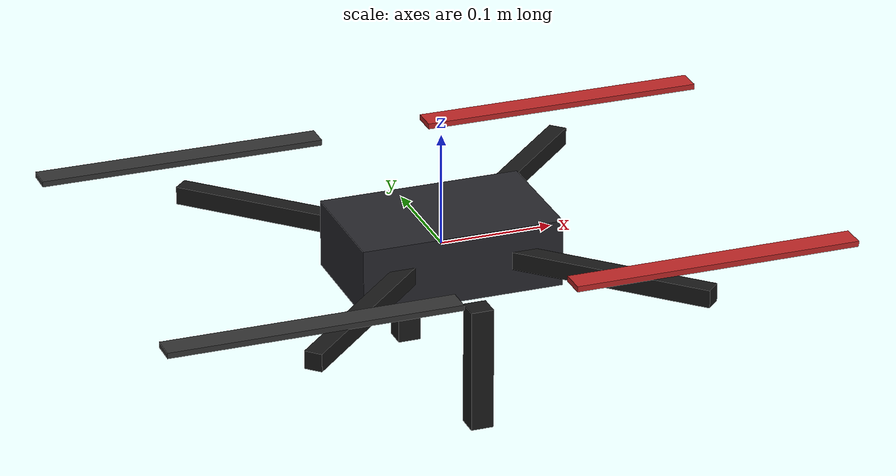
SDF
<?xml version="1.0"?>
<sdf version="1.9">
  <model name="x500_rgb">

    <link name="base_link">
      <inertial>
        <mass>0.94</mass>
        <inertia>
          <ixx>0.008</ixx><ixy>0</ixy><ixz>0</ixz>
          <iyy>0.008</iyy><iyz>0</iyz>
          <izz>0.015</izz>
        </inertia>
      </inertial>

      <!-- centre plate stack (flight controller, battery, companion Pi) -->
      <visual name="body_visual">
        <geometry><box><size>0.18 0.11 0.06</size></box></geometry>
        <material>
          <ambient>0.08 0.08 0.09 1</ambient>
          <diffuse>0.15 0.15 0.17 1</diffuse>
          <specular>0.2 0.2 0.2 1</specular>
        </material>
      </visual>
      <collision name="body_collision">
        <geometry><box><size>0.18 0.11 0.06</size></box></geometry>
      </collision>

      <visual name="arm_fr">
        <pose>0.088388 -0.088388 0 0 0 -0.785398</pose>
        <geometry><box><size>0.25 0.016 0.016</size></box></geometry>
        <material><diffuse>0.1 0.1 0.1 1</diffuse></material>
      </visual>
      <visual name="arm_bl">
        <pose>-0.088388 0.088388 0 0 0 -0.785398</pose>
        <geometry><box><size>0.25 0.016 0.016</size></box></geometry>
        <material><diffuse>0.1 0.1 0.1 1</diffuse></material>
      </visual>
      <visual name="arm_fl">
        <pose>0.088388 0.088388 0 0 0 0.785398</pose>
        <geometry><box><size>0.25 0.016 0.016</size></box></geometry>
        <material><diffuse>0.1 0.1 0.1 1</diffuse></material>
      </visual>
      <visual name="arm_br">
        <pose>-0.088388 -0.088388 0 0 0 0.785398</pose>
        <geometry><box><size>0.25 0.016 0.016</size></box></geometry>
        <material><diffuse>0.1 0.1 0.1 1</diffuse></material>
      </visual>

      <visual name="leg_left">
        <pose>0 0.09 -0.075 0 0 0</pose>
        <geometry><box><size>0.02 0.02 0.11</size></box></geometry>
        <material><diffuse>0.1 0.1 0.1 1</diffuse></material>
      </visual>
      <collision name="leg_left_collision">
        <pose>0 0.09 -0.075 0 0 0</pose>
        <geometry><box><size>0.02 0.02 0.11</size></box></geometry>
      </collision>
      <visual name="leg_right">
        <pose>0 -0.09 -0.075 0 0 0</pose>
        <geometry><box><size>0.02 0.02 0.11</size></box></geometry>
        <material><diffuse>0.1 0.1 0.1 1</diffuse></material>
      </visual>
      <collision name="leg_right_collision">
        <pose>0 -0.09 -0.075 0 0 0</pose>
        <geometry><box><size>0.02 0.02 0.11</size></box></geometry>
      </collision>

      <sensor name="imu_sensor" type="imu">
        <gz_frame_id>base_link</gz_frame_id>
        <pose degrees="true">0 0 0 180 0 0</pose>
        <always_on>1</always_on>
        <update_rate>1000.0</update_rate>
      </sensor>
    </link>

    <link name="camera_link">
      <pose>0 0 -0.045 0 1.570796 0</pose>
      <inertial>
        <mass>0.04</mass>
        <inertia>
          <ixx>1e-05</ixx><ixy>0</ixy><ixz>0</ixz>
          <iyy>1e-05</iyy><iyz>0</iyz>
          <izz>1e-05</izz>
        </inertia>
      </inertial>
      <visual name="camera_visual">
        <geometry><box><size>0.03 0.03 0.025</size></box></geometry>
        <material><diffuse>0.02 0.02 0.02 1</diffuse></material>
      </visual>

      <sensor name="nadir_camera" type="camera">
        <always_on>1</always_on>
        <update_rate>30</update_rate>
        <visualize>false</visualize>
        <topic>x500_rgb/nadir</topic>
        <camera>
          <horizontal_fov>1.151917</horizontal_fov>
          <image>
            <width>1920</width>
            <height>1080</height>
            <format>R8G8B8</format>
          </image>
          <clip><near>0.1</near><far>500</far></clip>
          <noise>
            <type>gaussian</type>
            <mean>0</mean>
            <stddev>0.005</stddev>
          </noise>
        </camera>
      </sensor>
    </link>
    <joint name="camera_joint" type="fixed">
      <parent>base_link</parent>
      <child>camera_link</child>
    </joint>

    <link name="rotor_0">
      <pose>0.176777 -0.176777 0.032 0 0 0</pose>
      <inertial>
        <mass>0.08</mass>
        <inertia>
          <ixx>1.0e-05</ixx><ixy>0</ixy><ixz>0</ixz>
          <iyy>3.5e-04</iyy><iyz>0</iyz>
          <izz>3.6e-04</izz>
        </inertia>
      </inertial>
      <visual name="prop">
        <geometry><box><size>0.254 0.022 0.005</size></box></geometry>
        <material><diffuse>0.75 0.15 0.15 1</diffuse></material>
      </visual>
    </link>
    <joint name="rotor_0_joint" type="revolute">
      <parent>base_link</parent>
      <child>rotor_0</child>
      <axis>
        <xyz>0 0 1</xyz>
        <limit><lower>-1e16</lower><upper>1e16</upper></limit>
        <dynamics><damping>0.004</damping></dynamics>
      </axis>
    </joint>

    <link name="rotor_1">
      <pose>-0.176777 0.176777 0.032 0 0 0</pose>
      <inertial>
        <mass>0.08</mass>
        <inertia>
          <ixx>1.0e-05</ixx><ixy>0</ixy><ixz>0</ixz>
          <iyy>3.5e-04</iyy><iyz>0</iyz>
          <izz>3.6e-04</izz>
        </inertia>
      </inertial>
      <visual name="prop">
        <geometry><box><size>0.254 0.022 0.005</size></box></geometry>
        <material><diffuse>0.2 0.2 0.2 1</diffuse></material>
      </visual>
    </link>
    <joint name="rotor_1_joint" type="revolute">
      <parent>base_link</parent>
      <child>rotor_1</child>
      <axis>
        <xyz>0 0 1</xyz>
        <limit><lower>-1e16</lower><upper>1e16</upper></limit>
        <dynamics><damping>0.004</damping></dynamics>
      </axis>
    </joint>

    <link name="rotor_2">
      <pose>0.176777 0.176777 0.032 0 0 0</pose>
      <inertial>
        <mass>0.08</mass>
        <inertia>
          <ixx>1.0e-05</ixx><ixy>0</ixy><ixz>0</ixz>
          <iyy>3.5e-04</iyy><iyz>0</iyz>
          <izz>3.6e-04</izz>
        </inertia>
      </inertial>
      <visual name="prop">
        <geometry><box><size>0.254 0.022 0.005</size></box></geometry>
        <material><diffuse>0.75 0.15 0.15 1</diffuse></material>
      </visual>
    </link>
    <joint name="rotor_2_joint" type="revolute">
      <parent>base_link</parent>
      <child>rotor_2</child>
      <axis>
        <xyz>0 0 1</xyz>
        <limit><lower>-1e16</lower><upper>1e16</upper></limit>
        <dynamics><damping>0.004</damping></dynamics>
      </axis>
    </joint>

    <link name="rotor_3">
      <pose>-0.176777 -0.176777 0.032 0 0 0</pose>
      <inertial>
        <mass>0.08</mass>
        <inertia>
          <ixx>1.0e-05</ixx><ixy>0</ixy><ixz>0</ixz>
          <iyy>3.5e-04</iyy><iyz>0</iyz>
          <izz>3.6e-04</izz>
        </inertia>
      </inertial>
      <visual name="prop">
        <geometry><box><size>0.254 0.022 0.005</size></box></geometry>
        <material><diffuse>0.2 0.2 0.2 1</diffuse></material>
      </visual>
    </link>
    <joint name="rotor_3_joint" type="revolute">
      <parent>base_link</parent>
      <child>rotor_3</child>
      <axis>
        <xyz>0 0 1</xyz>
        <limit><lower>-1e16</lower><upper>1e16</upper></limit>
        <dynamics><damping>0.004</damping></dynamics>
      </axis>
    </joint>

    <plugin filename="gz-sim-apply-joint-force-system"
            name="gz::sim::systems::ApplyJointForce">
      <joint_name>rotor_0_joint</joint_name>
    </plugin>
    <plugin filename="gz-sim-apply-joint-force-system"
            name="gz::sim::systems::ApplyJointForce">
      <joint_name>rotor_1_joint</joint_name>
    </plugin>
    <plugin filename="gz-sim-apply-joint-force-system"
            name="gz::sim::systems::ApplyJointForce">
      <joint_name>rotor_2_joint</joint_name>
    </plugin>
    <plugin filename="gz-sim-apply-joint-force-system"
            name="gz::sim::systems::ApplyJointForce">
      <joint_name>rotor_3_joint</joint_name>
    </plugin>

    <plugin filename="gz-sim-lift-drag-system" name="gz::sim::systems::LiftDrag">
      <a0>0.3</a0><alpha_stall>1.4</alpha_stall>
      <cla>4.2500</cla><cda>0.10</cda><cma>0.0</cma>
      <cla_stall>-0.025</cla_stall><cda_stall>0.0</cda_stall><cma_stall>0.0</cma_stall>
      <area>0.002</area><air_density>1.2041</air_density>
      <cp>0.084 0 0</cp><forward>0 1 0</forward><upward>0 0 1</upward>
      <link_name>rotor_0</link_name>
    </plugin>
    <plugin filename="gz-sim-lift-drag-system" name="gz::sim::systems::LiftDrag">
      <a0>0.3</a0><alpha_stall>1.4</alpha_stall>
      <cla>4.2500</cla><cda>0.10</cda><cma>0.0</cma>
      <cla_stall>-0.025</cla_stall><cda_stall>0.0</cda_stall><cma_stall>0.0</cma_stall>
      <area>0.002</area><air_density>1.2041</air_density>
      <cp>-0.084 0 0</cp><forward>0 -1 0</forward><upward>0 0 1</upward>
      <link_name>rotor_0</link_name>
    </plugin>

    <plugin filename="gz-sim-lift-drag-system" name="gz::sim::systems::LiftDrag">
      <a0>0.3</a0><alpha_stall>1.4</alpha_stall>
      <cla>4.2500</cla><cda>0.10</cda><cma>0.0</cma>
      <cla_stall>-0.025</cla_stall><cda_stall>0.0</cda_stall><cma_stall>0.0</cma_stall>
      <area>0.002</area><air_density>1.2041</air_density>
      <cp>0.084 0 0</cp><forward>0 1 0</forward><upward>0 0 1</upward>
      <link_name>rotor_1</link_name>
    </plugin>
    <plugin filename="gz-sim-lift-drag-system" name="gz::sim::systems::LiftDrag">
      <a0>0.3</a0><alpha_stall>1.4</alpha_stall>
      <cla>4.2500</cla><cda>0.10</cda><cma>0.0</cma>
      <cla_stall>-0.025</cla_stall><cda_stall>0.0</cda_stall><cma_stall>0.0</cma_stall>
      <area>0.002</area><air_density>1.2041</air_density>
      <cp>-0.084 0 0</cp><forward>0 -1 0</forward><upward>0 0 1</upward>
      <link_name>rotor_1</link_name>
    </plugin>

    <plugin filename="gz-sim-lift-drag-system" name="gz::sim::systems::LiftDrag">
      <a0>0.3</a0><alpha_stall>1.4</alpha_stall>
      <cla>4.2500</cla><cda>0.10</cda><cma>0.0</cma>
      <cla_stall>-0.025</cla_stall><cda_stall>0.0</cda_stall><cma_stall>0.0</cma_stall>
      <area>0.002</area><air_density>1.2041</air_density>
      <cp>0.084 0 0</cp><forward>0 -1 0</forward><upward>0 0 1</upward>
      <link_name>rotor_2</link_name>
    </plugin>
    <plugin filename="gz-sim-lift-drag-system" name="gz::sim::systems::LiftDrag">
      <a0>0.3</a0><alpha_stall>1.4</alpha_stall>
      <cla>4.2500</cla><cda>0.10</cda><cma>0.0</cma>
      <cla_stall>-0.025</cla_stall><cda_stall>0.0</cda_stall><cma_stall>0.0</cma_stall>
      <area>0.002</area><air_density>1.2041</air_density>
      <cp>-0.084 0 0</cp><forward>0 1 0</forward><upward>0 0 1</upward>
      <link_name>rotor_2</link_name>
    </plugin>

    <plugin filename="gz-sim-lift-drag-system" name="gz::sim::systems::LiftDrag">
      <a0>0.3</a0><alpha_stall>1.4</alpha_stall>
      <cla>4.2500</cla><cda>0.10</cda><cma>0.0</cma>
      <cla_stall>-0.025</cla_stall><cda_stall>0.0</cda_stall><cma_stall>0.0</cma_stall>
      <area>0.002</area><air_density>1.2041</air_density>
      <cp>0.084 0 0</cp><forward>0 -1 0</forward><upward>0 0 1</upward>
      <link_name>rotor_3</link_name>
    </plugin>
    <plugin filename="gz-sim-lift-drag-system" name="gz::sim::systems::LiftDrag">
      <a0>0.3</a0><alpha_stall>1.4</alpha_stall>
      <cla>4.2500</cla><cda>0.10</cda><cma>0.0</cma>
      <cla_stall>-0.025</cla_stall><cda_stall>0.0</cda_stall><cma_stall>0.0</cma_stall>
      <area>0.002</area><air_density>1.2041</air_density>
      <cp>-0.084 0 0</cp><forward>0 1 0</forward><upward>0 0 1</upward>
      <link_name>rotor_3</link_name>
    </plugin>

    <plugin filename="gz-sim-joint-state-publisher-system"
            name="gz::sim::systems::JointStatePublisher">
    </plugin>

    <plugin name="ArduPilotPlugin" filename="ArduPilotPlugin">
      <fdm_addr>127.0.0.1</fdm_addr>
      <fdm_port_in>9002</fdm_port_in>
      <connectionTimeoutMaxCount>5</connectionTimeoutMaxCount>
      <lock_step>1</lock_step>
      <no_time_sync>1</no_time_sync>
      <have_32_channels>0</have_32_channels>

      <modelXYZToAirplaneXForwardZDown degrees="true">0 0 0 180 0 0</modelXYZToAirplaneXForwardZDown>
      <gazeboXYZToNED degrees="true">0 0 0 180 0 90</gazeboXYZToNED>

      <imuName>imu_sensor</imuName>

      <control channel="0">
        <jointName>rotor_0_joint</jointName>
        <useForce>1</useForce>
        <multiplier>838</multiplier>
        <offset>0</offset>
        <servo_min>1100</servo_min>
        <servo_max>1900</servo_max>
        <type>VELOCITY</type>
        <p_gain>0.20</p_gain><i_gain>0</i_gain><d_gain>0</d_gain>
        <i_max>0</i_max><i_min>0</i_min>
        <cmd_max>2.5</cmd_max><cmd_min>-2.5</cmd_min>
        <controlVelocitySlowdownSim>1</controlVelocitySlowdownSim>
      </control>

      <control channel="1">
        <jointName>rotor_1_joint</jointName>
        <useForce>1</useForce>
        <multiplier>838</multiplier>
        <offset>0</offset>
        <servo_min>1100</servo_min>
        <servo_max>1900</servo_max>
        <type>VELOCITY</type>
        <p_gain>0.20</p_gain><i_gain>0</i_gain><d_gain>0</d_gain>
        <i_max>0</i_max><i_min>0</i_min>
        <cmd_max>2.5</cmd_max><cmd_min>-2.5</cmd_min>
        <controlVelocitySlowdownSim>1</controlVelocitySlowdownSim>
      </control>

      <control channel="2">
        <jointName>rotor_2_joint</jointName>
        <useForce>1</useForce>
        <multiplier>-838</multiplier>
        <offset>0</offset>
        <servo_min>1100</servo_min>
        <servo_max>1900</servo_max>
        <type>VELOCITY</type>
        <p_gain>0.20</p_gain><i_gain>0</i_gain><d_gain>0</d_gain>
        <i_max>0</i_max><i_min>0</i_min>
        <cmd_max>2.5</cmd_max><cmd_min>-2.5</cmd_min>
        <controlVelocitySlowdownSim>1</controlVelocitySlowdownSim>
      </control>

      <control channel="3">
        <jointName>rotor_3_joint</jointName>
        <useForce>1</useForce>
        <multiplier>-838</multiplier>
        <offset>0</offset>
        <servo_min>1100</servo_min>
        <servo_max>1900</servo_max>
        <type>VELOCITY</type>
        <p_gain>0.20</p_gain><i_gain>0</i_gain><d_gain>0</d_gain>
        <i_max>0</i_max><i_min>0</i_min>
        <cmd_max>2.5</cmd_max><cmd_min>-2.5</cmd_min>
        <controlVelocitySlowdownSim>1</controlVelocitySlowdownSim>
      </control>
    </plugin>

  </model>
</sdf>
